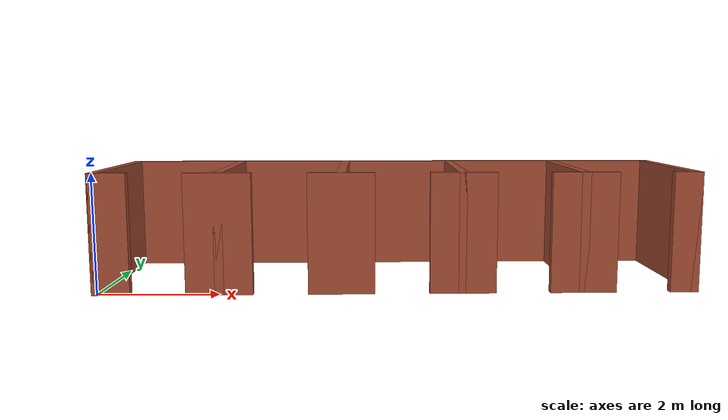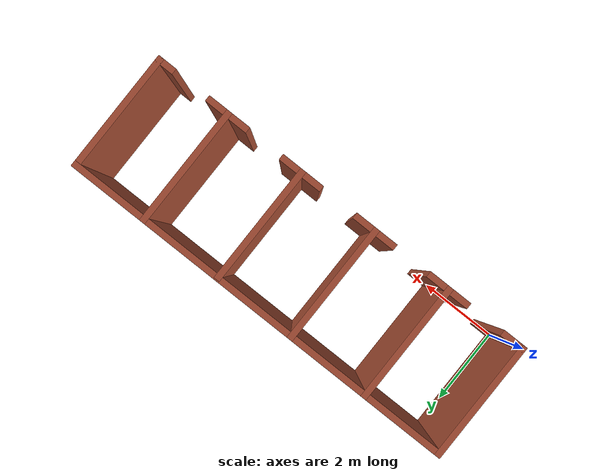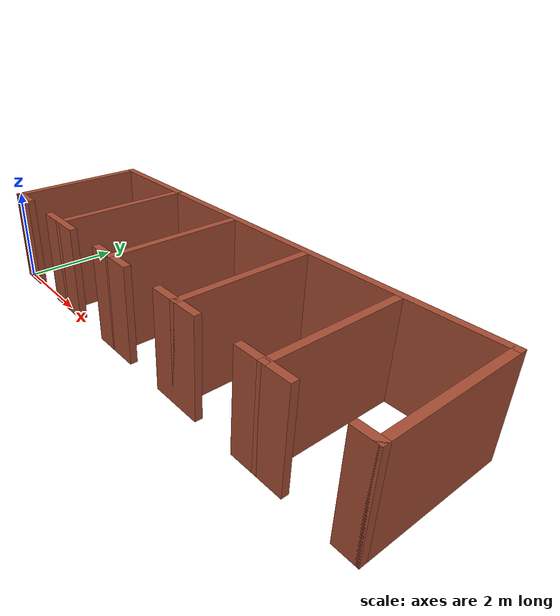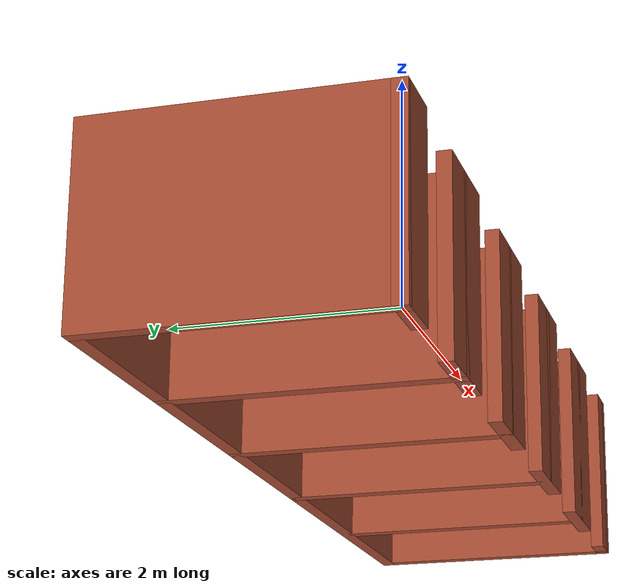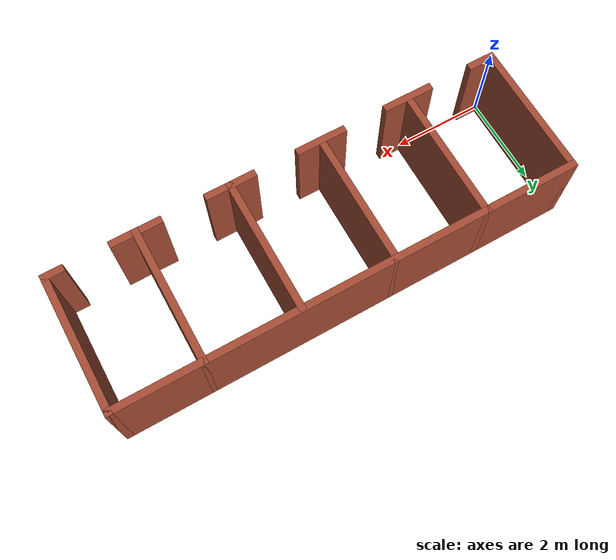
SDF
<?xml version='1.0'?>
<sdf version='1.7'>
  <model name='garage'>
    <pose>4.925 1.425 0 0 -0 0</pose>
    <link name='Wall_11'>
      <collision name='Wall_11_Collision'>
        <geometry>
          <box>
            <size>3 0.15 2</size>
          </box>
        </geometry>
        <pose>0 0 1 0 -0 0</pose>
      </collision>
      <visual name='Wall_11_Visual'>
        <pose>0 0 1 0 -0 0</pose>
        <geometry>
          <box>
            <size>3 0.15 2</size>
          </box>
        </geometry>
        <material>
          <script>
            <uri>file://media/materials/scripts/gazebo.material</uri>
            <name>Gazebo/Bricks</name>
          </script>
          <ambient>1 1 1 1</ambient>
        </material>
        <meta>
          <layer>0</layer>
        </meta>
      </visual>
      <pose>-2.925 0 0 0 -0 1.5708</pose>
    </link>
    <link name='Wall_13'>
      <collision name='Wall_13_Collision'>
        <geometry>
          <box>
            <size>3 0.15 2</size>
          </box>
        </geometry>
        <pose>0 0 1 0 -0 0</pose>
      </collision>
      <visual name='Wall_13_Visual'>
        <pose>0 0 1 0 -0 0</pose>
        <geometry>
          <box>
            <size>3 0.15 2</size>
          </box>
        </geometry>
        <material>
          <script>
            <uri>file://media/materials/scripts/gazebo.material</uri>
            <name>Gazebo/Bricks</name>
          </script>
          <ambient>1 1 1 1</ambient>
        </material>
        <meta>
          <layer>0</layer>
        </meta>
      </visual>
      <pose>-0.925 0 0 0 -0 1.5708</pose>
    </link>
    <link name='Wall_15'>
      <collision name='Wall_15_Collision'>
        <geometry>
          <box>
            <size>2.97 0.15 2</size>
          </box>
        </geometry>
        <pose>0 0 1 0 -0 0</pose>
      </collision>
      <visual name='Wall_15_Visual'>
        <pose>0 0 1 0 -0 0</pose>
        <geometry>
          <box>
            <size>2.97 0.15 2</size>
          </box>
        </geometry>
        <material>
          <script>
            <uri>file://media/materials/scripts/gazebo.material</uri>
            <name>Gazebo/Bricks</name>
          </script>
          <ambient>1 1 1 1</ambient>
        </material>
        <meta>
          <layer>0</layer>
        </meta>
      </visual>
      <pose>1.075 -0.015 0 0 -0 1.5708</pose>
    </link>
    <link name='Wall_17'>
      <collision name='Wall_17_Collision'>
        <geometry>
          <box>
            <size>3 0.15 2</size>
          </box>
        </geometry>
        <pose>0 0 1 0 -0 0</pose>
      </collision>
      <visual name='Wall_17_Visual'>
        <pose>0 0 1 0 -0 0</pose>
        <geometry>
          <box>
            <size>3 0.15 2</size>
          </box>
        </geometry>
        <material>
          <script>
            <uri>file://media/materials/scripts/gazebo.material</uri>
            <name>Gazebo/Bricks</name>
          </script>
          <ambient>1 1 1 1</ambient>
        </material>
        <meta>
          <layer>0</layer>
        </meta>
      </visual>
      <pose>3.075 0 0 0 -0 1.5708</pose>
    </link>
    <link name='Wall_5'>
      <pose>0 -1.425 0 0 -0 0</pose>
      <visual name='Wall_5_Visual_0'>
        <pose>-4.6875 0 1 0 -0 0</pose>
        <geometry>
          <box>
            <size>0.625 0.15 2</size>
          </box>
        </geometry>
        <material>
          <script>
            <uri>file://media/materials/scripts/gazebo.material</uri>
            <name>Gazebo/Bricks</name>
          </script>
          <ambient>1 1 1 1</ambient>
        </material>
        <meta>
          <layer>0</layer>
        </meta>
      </visual>
      <collision name='Wall_5_Collision_0'>
        <geometry>
          <box>
            <size>0.625 0.15 2</size>
          </box>
        </geometry>
        <pose>-4.6875 0 1 0 -0 0</pose>
      </collision>
      <visual name='Wall_5_Visual_1'>
        <pose>-2.925 0 1 0 -0 0</pose>
        <geometry>
          <box>
            <size>1.1 0.15 2</size>
          </box>
        </geometry>
        <material>
          <script>
            <uri>file://media/materials/scripts/gazebo.material</uri>
            <name>Gazebo/Bricks</name>
          </script>
          <ambient>1 1 1 1</ambient>
        </material>
        <meta>
          <layer>0</layer>
        </meta>
      </visual>
      <collision name='Wall_5_Collision_1'>
        <geometry>
          <box>
            <size>1.1 0.15 2</size>
          </box>
        </geometry>
        <pose>-2.925 0 1 0 -0 0</pose>
      </collision>
      <visual name='Wall_5_Visual_2'>
        <pose>-0.925 0 1 0 -0 0</pose>
        <geometry>
          <box>
            <size>1.1 0.15 2</size>
          </box>
        </geometry>
        <material>
          <script>
            <uri>file://media/materials/scripts/gazebo.material</uri>
            <name>Gazebo/Bricks</name>
          </script>
          <ambient>1 1 1 1</ambient>
        </material>
        <meta>
          <layer>0</layer>
        </meta>
      </visual>
      <collision name='Wall_5_Collision_2'>
        <geometry>
          <box>
            <size>1.1 0.15 2</size>
          </box>
        </geometry>
        <pose>-0.925 0 1 0 -0 0</pose>
      </collision>
      <visual name='Wall_5_Visual_3'>
        <pose>1.075 0 1 0 -0 0</pose>
        <geometry>
          <box>
            <size>1.1 0.15 2</size>
          </box>
        </geometry>
        <material>
          <script>
            <uri>file://media/materials/scripts/gazebo.material</uri>
            <name>Gazebo/Bricks</name>
          </script>
          <ambient>1 1 1 1</ambient>
        </material>
        <meta>
          <layer>0</layer>
        </meta>
      </visual>
      <collision name='Wall_5_Collision_3'>
        <geometry>
          <box>
            <size>1.1 0.15 2</size>
          </box>
        </geometry>
        <pose>1.075 0 1 0 -0 0</pose>
      </collision>
      <visual name='Wall_5_Visual_4'>
        <pose>3.075 0 1 0 -0 0</pose>
        <geometry>
          <box>
            <size>1.1 0.15 2</size>
          </box>
        </geometry>
        <material>
          <script>
            <uri>file://media/materials/scripts/gazebo.material</uri>
            <name>Gazebo/Bricks</name>
          </script>
          <ambient>1 1 1 1</ambient>
        </material>
        <meta>
          <layer>0</layer>
        </meta>
      </visual>
      <collision name='Wall_5_Collision_4'>
        <geometry>
          <box>
            <size>1.1 0.15 2</size>
          </box>
        </geometry>
        <pose>3.075 0 1 0 -0 0</pose>
      </collision>
      <visual name='Wall_5_Visual_5'>
        <pose>4.7625 0 1 0 -0 0</pose>
        <geometry>
          <box>
            <size>0.475 0.15 2</size>
          </box>
        </geometry>
        <material>
          <script>
            <uri>file://media/materials/scripts/gazebo.material</uri>
            <name>Gazebo/Bricks</name>
          </script>
          <ambient>1 1 1 1</ambient>
        </material>
        <meta>
          <layer>0</layer>
        </meta>
      </visual>
      <collision name='Wall_5_Collision_5'>
        <geometry>
          <box>
            <size>0.475 0.15 2</size>
          </box>
        </geometry>
        <pose>4.7625 0 1 0 -0 0</pose>
      </collision>
    </link>
    <link name='Wall_7'>
      <collision name='Wall_7_Collision'>
        <geometry>
          <box>
            <size>3 0.15 2</size>
          </box>
        </geometry>
        <pose>0 0 1 0 -0 0</pose>
      </collision>
      <visual name='Wall_7_Visual'>
        <pose>0 0 1 0 -0 0</pose>
        <geometry>
          <box>
            <size>3 0.15 2</size>
          </box>
        </geometry>
        <material>
          <script>
            <uri>file://media/materials/scripts/gazebo.material</uri>
            <name>Gazebo/Bricks</name>
          </script>
          <ambient>1 1 1 1</ambient>
        </material>
        <meta>
          <layer>0</layer>
        </meta>
      </visual>
      <pose>-4.925 0 0 0 -0 1.5708</pose>
    </link>
    <link name='Wall_8'>
      <collision name='Wall_8_Collision'>
        <geometry>
          <box>
            <size>10 0.15 2</size>
          </box>
        </geometry>
        <pose>0 0 1 0 -0 0</pose>
      </collision>
      <visual name='Wall_8_Visual'>
        <pose>0 0 1 0 -0 0</pose>
        <geometry>
          <box>
            <size>10 0.15 2</size>
          </box>
        </geometry>
        <material>
          <script>
            <uri>file://media/materials/scripts/gazebo.material</uri>
            <name>Gazebo/Bricks</name>
          </script>
          <ambient>1 1 1 1</ambient>
        </material>
        <meta>
          <layer>0</layer>
        </meta>
      </visual>
      <pose>0 1.425 0 0 -0 0</pose>
    </link>
    <link name='Wall_9'>
      <collision name='Wall_9_Collision'>
        <geometry>
          <box>
            <size>3 0.15 2</size>
          </box>
        </geometry>
        <pose>0 0 1 0 -0 0</pose>
      </collision>
      <visual name='Wall_9_Visual'>
        <pose>0 0 1 0 -0 0</pose>
        <geometry>
          <box>
            <size>3 0.15 2</size>
          </box>
        </geometry>
        <material>
          <script>
            <uri>file://media/materials/scripts/gazebo.material</uri>
            <name>Gazebo/Bricks</name>
          </script>
          <ambient>1 1 1 1</ambient>
        </material>
        <meta>
          <layer>0</layer>
        </meta>
      </visual>
      <pose>4.925 0 0 0 -0 -1.5708</pose>
    </link>
    <static>1</static>
  </model>
</sdf>
